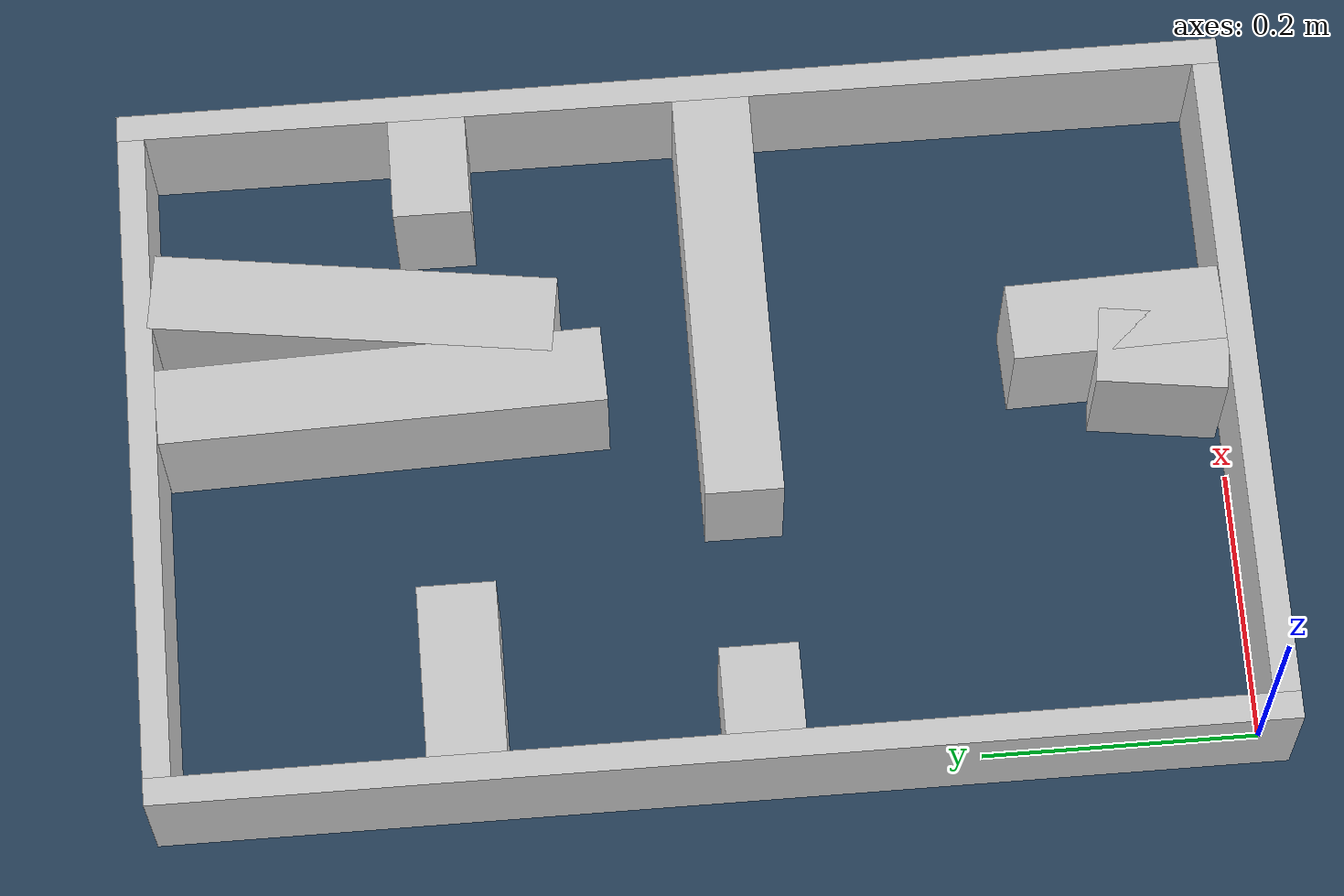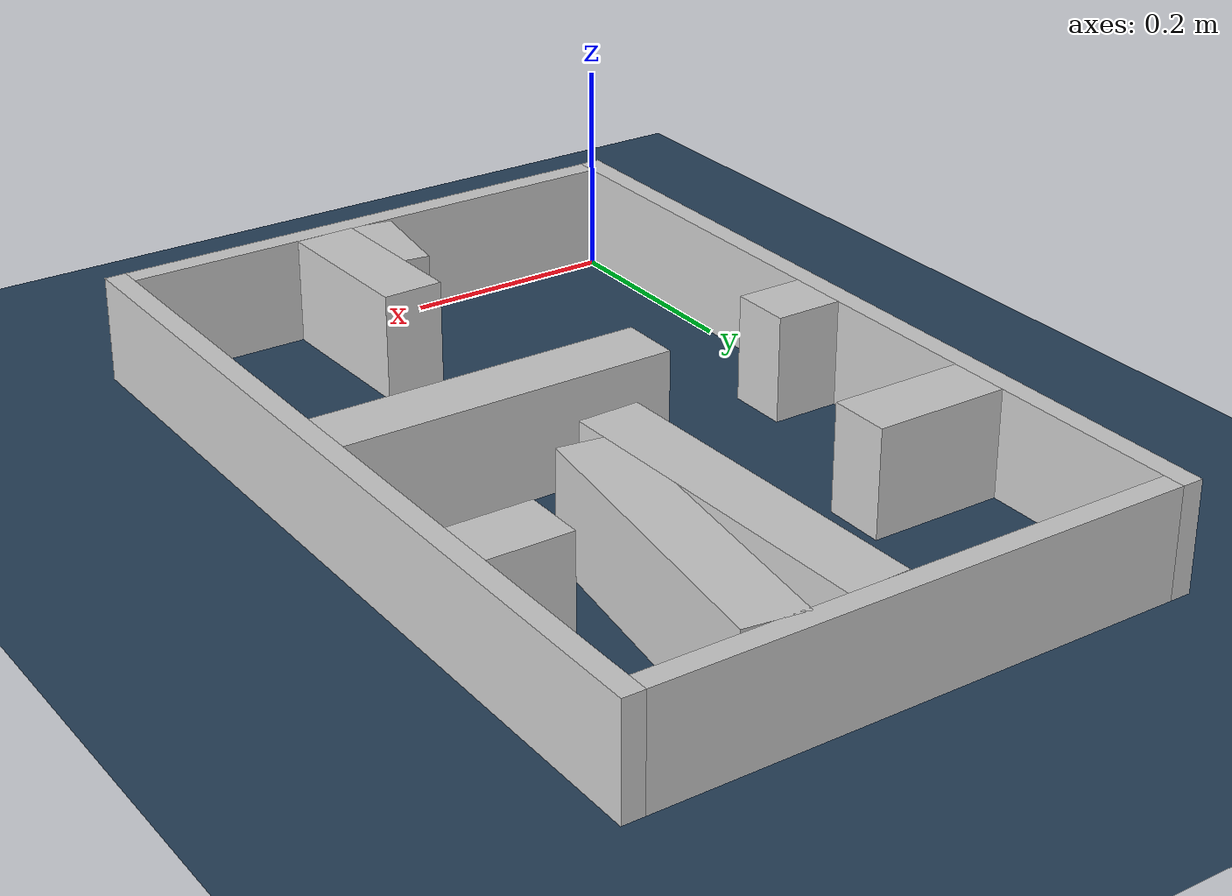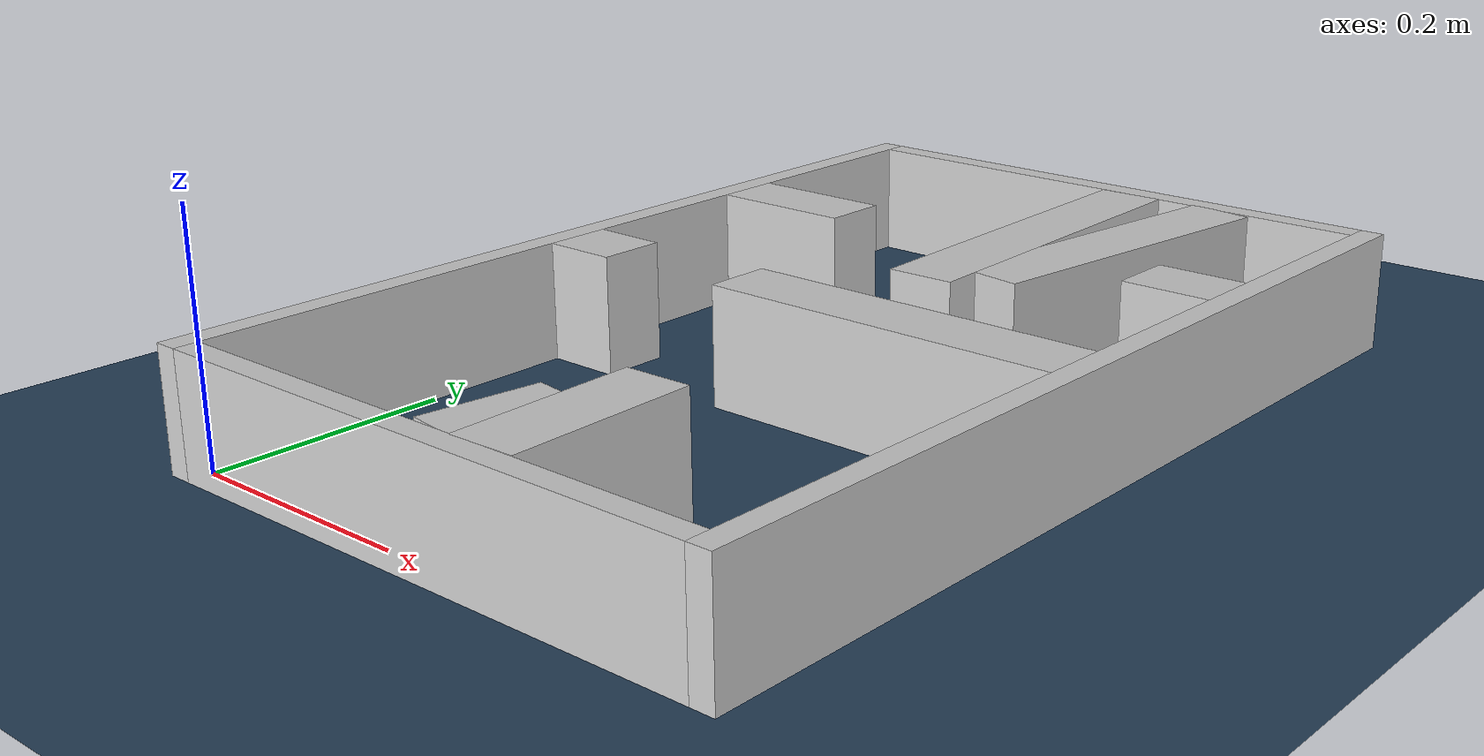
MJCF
<?xml version="1.0" ?>
<mujoco model="generated_real_template">
  <compiler angle="degree"/>
  <option timestep="0.002" integrator="implicitfast" iterations="100" cone="elliptic"/>
  <default>
    <geom density="1"/>
  </default>
  <asset>
    <texture builtin="gradient" height="3072" rgb1="0.3 0.5 0.7" rgb2="0 0 0" type="skybox" width="512"/>
    <texture builtin="checker" height="300" mark="edge" markrgb="0.8 0.8 0.8" name="groundplane" rgb1="0.2 0.3 0.4" rgb2="0.1 0.2 0.3" type="2d" width="300"/>
    <material name="groundplane" reflectance="0.2" texrepeat="5 5" texture="groundplane" texuniform="true"/>
  </asset>
  <worldbody>
    <light dir="0 0 -1" directional="true" pos="0 0 1.5"/>
    <geom name="floor" type="plane" condim="4" friction="0.5 0.005 0.001" material="groundplane" size="0 0 0.05"/>
    <body name="walls">
      <geom name="wall_boundary_left" type="box" condim="4" friction="1.0 0.005 0.0001" rgba="0.8 0.8 0.8 1" pos="-0.010000 0.387500 0.050000" euler="0 0 0.000000" size="0.010000 0.407500 0.050000"/>
      <geom name="wall_boundary_right" type="box" condim="4" friction="1.0 0.005 0.0001" rgba="0.8 0.8 0.8 1" pos="0.500000 0.387500 0.050000" euler="0 0 0.000000" size="0.010000 0.407500 0.050000"/>
      <geom name="wall_boundary_bottom" type="box" condim="4" friction="1.0 0.005 0.0001" rgba="0.8 0.8 0.8 1" pos="0.245000 -0.010000 0.050000" euler="0 0 0.000000" size="0.245000 0.010000 0.050000"/>
      <geom name="wall_boundary_top" type="box" condim="4" friction="1.0 0.005 0.0001" rgba="0.8 0.8 0.8 1" pos="0.245000 0.785000 0.050000" euler="0 0 0.000000" size="0.245000 0.010000 0.050000"/>
      <geom name="wall_inner_1_1" type="box" condim="4" friction="1.0 0.005 0.0001" rgba="0.8 0.8 0.8 1" pos="0.297111 0.077969 0.050000" euler="0 0 91.598403" size="0.077999 0.028500 0.050000"/>
      <geom name="wall_inner_1_2" type="box" condim="4" friction="1.0 0.005 0.0001" rgba="0.8 0.8 0.8 1" pos="0.282182 0.612943 0.050000" euler="0 0 91.598403" size="0.162120 0.028500 0.050000"/>
      <geom name="wall_inner_2_1" type="box" condim="4" friction="1.0 0.005 0.0001" rgba="0.8 0.8 0.8 1" pos="0.063202 0.567793 0.050000" euler="0 0 0.000000" size="0.063202 0.028500 0.050000"/>
      <geom name="wall_inner_2_2" type="box" condim="4" friction="1.0 0.005 0.0001" rgba="0.8 0.8 0.8 1" pos="0.451809 0.567793 0.050000" euler="0 0 0.000000" size="0.038191 0.028500 0.050000"/>
      <geom name="wall_inner_3_1" type="box" condim="4" friction="1.0 0.005 0.0001" rgba="0.8 0.8 0.8 1" pos="0.032041 0.357678 0.050000" euler="0 0 0.000000" size="0.032041 0.028500 0.050000"/>
      <geom name="wall_inner_3_2" type="box" condim="4" friction="1.0 0.005 0.0001" rgba="0.8 0.8 0.8 1" pos="0.335113 0.357678 0.050000" euler="0 0 0.000000" size="0.154887 0.028500 0.050000"/>
      <geom name="wall_inner_4_1" type="box" condim="4" friction="1.0 0.005 0.0001" rgba="0.8 0.8 0.8 1" pos="0.266437 0.047051 0.050000" euler="0 0 82.041170" size="0.047509 0.028500 0.050000"/>
      <geom name="wall_inner_4_2" type="box" condim="4" friction="1.0 0.005 0.0001" rgba="0.8 0.8 0.8 1" pos="0.347850 0.629374 0.050000" euler="0 0 82.041170" size="0.147043 0.028500 0.050000"/>
    </body>
  </worldbody>
</mujoco>
